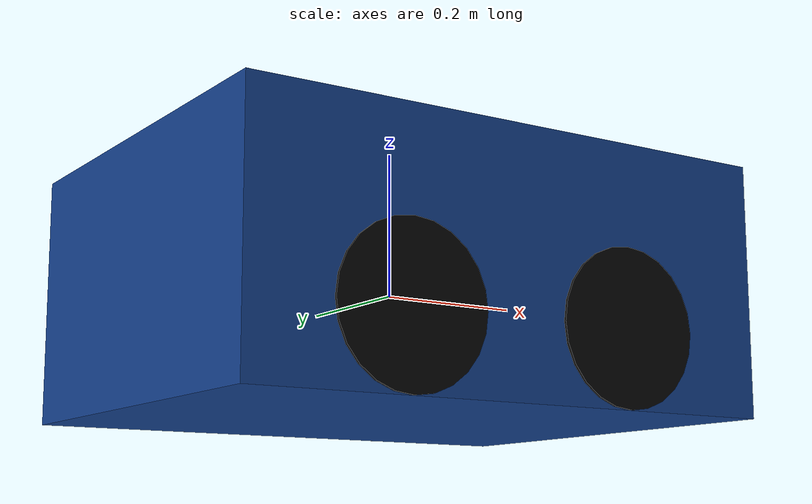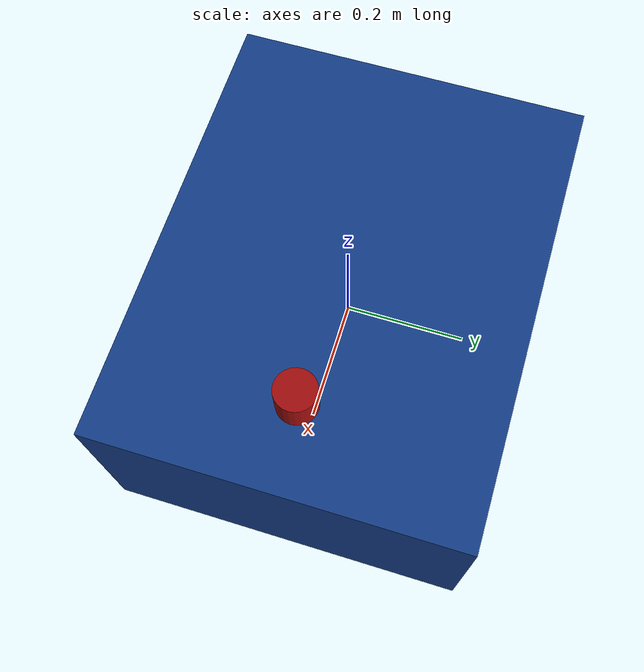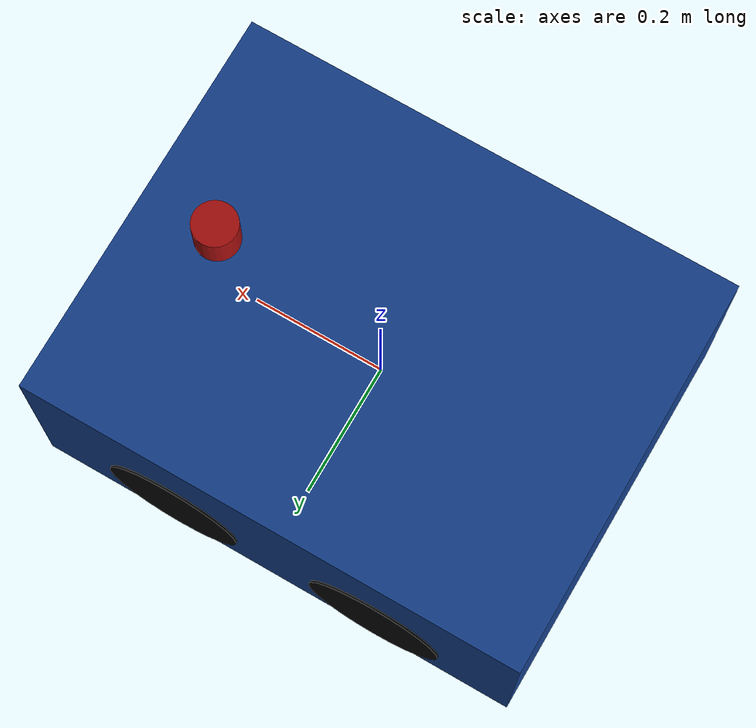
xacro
<?xml version="1.0"?>
<robot xmlns:xacro="http://www.ros.org/wiki/xacro" name="romo_b">
  <xacro:arg name="lidar_x" default="0.25"/>
  <xacro:arg name="lidar_y" default="0.0"/>
  <xacro:arg name="lidar_z" default="0.25"/>
  <xacro:arg name="lidar_roll" default="0.0"/>
  <xacro:arg name="lidar_pitch" default="0.0"/>
  <xacro:arg name="lidar_yaw" default="0.0"/>

  <xacro:property name="body_length" value="0.756"/>
  <xacro:property name="body_width" value="0.597"/>
  <xacro:property name="body_height" value="0.342"/>
  <xacro:property name="wheelbase" value="0.323"/>
  <xacro:property name="visual_track" value="0.529"/>
  <xacro:property name="wheel_radius" value="0.103"/>
  <xacro:property name="wheel_width" value="0.075"/>

  <material name="body_blue"><color rgba="0.08 0.25 0.55 1.0"/></material>
  <material name="wheel_black"><color rgba="0.03 0.03 0.03 1.0"/></material>
  <material name="sensor_red"><color rgba="0.65 0.05 0.05 1.0"/></material>

  <link name="base_footprint"/>
  <joint name="base_footprint_joint" type="fixed">
    <!-- base_link is the dynamic odometry child. Keeping the ground-projected
         frame below it avoids giving base_link two TF parents. -->
    <parent link="base_link"/>
    <child link="base_footprint"/>
    <origin xyz="0 0 ${-body_height / 2.0}" rpy="0 0 0"/>
  </joint>

  <link name="base_link">
    <visual>
      <geometry><box size="${body_length} ${body_width} ${body_height}"/></geometry>
      <material name="body_blue"/>
    </visual>
    <collision>
      <geometry><box size="${body_length} ${body_width} ${body_height}"/></geometry>
    </collision>
    <inertial>
      <mass value="55.0"/>
      <origin xyz="0 0 0"/>
      <inertia ixx="2.15" ixy="0" ixz="0" iyy="3.14" iyz="0" izz="4.61"/>
    </inertial>
  </link>

  <xacro:macro name="wheel_module" params="prefix x y">
    <link name="${prefix}_steer_link">
      <visual><geometry><cylinder radius="0.035" length="0.04"/></geometry></visual>
    </link>
    <joint name="${prefix}_steer_joint" type="revolute">
      <parent link="base_link"/>
      <child link="${prefix}_steer_link"/>
      <origin xyz="${x} ${y} ${wheel_radius - body_height / 2.0}" rpy="0 0 0"/>
      <axis xyz="0 0 1"/>
      <limit lower="-0.523599" upper="0.523599" effort="500" velocity="2.83"/>
    </joint>
    <link name="${prefix}_wheel_link">
      <visual>
        <origin rpy="1.570796 0 0"/>
        <geometry><cylinder radius="${wheel_radius}" length="${wheel_width}"/></geometry>
        <material name="wheel_black"/>
      </visual>
      <collision>
        <origin rpy="1.570796 0 0"/>
        <geometry><cylinder radius="${wheel_radius}" length="${wheel_width}"/></geometry>
      </collision>
    </link>
    <joint name="${prefix}_wheel_joint" type="continuous">
      <parent link="${prefix}_steer_link"/>
      <child link="${prefix}_wheel_link"/>
      <axis xyz="0 1 0"/>
    </joint>
  </xacro:macro>

  <xacro:wheel_module prefix="fl" x="${wheelbase / 2.0}" y="${visual_track / 2.0}"/>
  <xacro:wheel_module prefix="fr" x="${wheelbase / 2.0}" y="${-visual_track / 2.0}"/>
  <xacro:wheel_module prefix="rl" x="${-wheelbase / 2.0}" y="${visual_track / 2.0}"/>
  <xacro:wheel_module prefix="rr" x="${-wheelbase / 2.0}" y="${-visual_track / 2.0}"/>

  <!-- Placeholder until config/local/hardware.yaml records a measured transform. -->
  <link name="livox_frame">
    <visual>
      <!-- Mid-360 origin O is 47 mm above its bottom; its body is 60 mm tall. -->
      <origin xyz="0 0 -0.017" rpy="0 0 0"/>
      <geometry><cylinder radius="0.0325" length="0.060"/></geometry>
      <material name="sensor_red"/>
    </visual>
  </link>
  <joint name="livox_joint" type="fixed">
    <parent link="base_link"/>
    <child link="livox_frame"/>
    <origin xyz="$(arg lidar_x) $(arg lidar_y) $(arg lidar_z)"
            rpy="$(arg lidar_roll) $(arg lidar_pitch) $(arg lidar_yaw)"/>
  </joint>
</robot>
